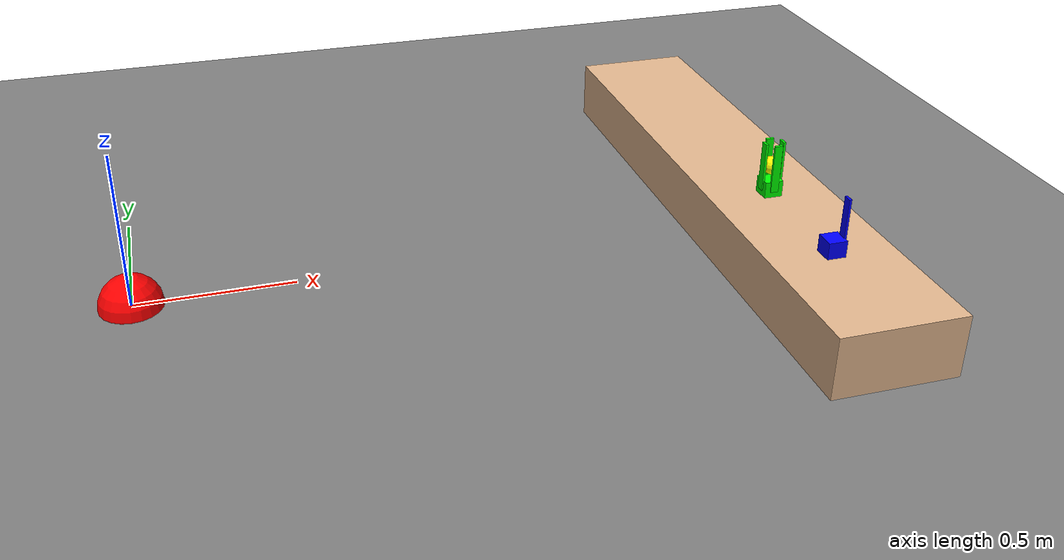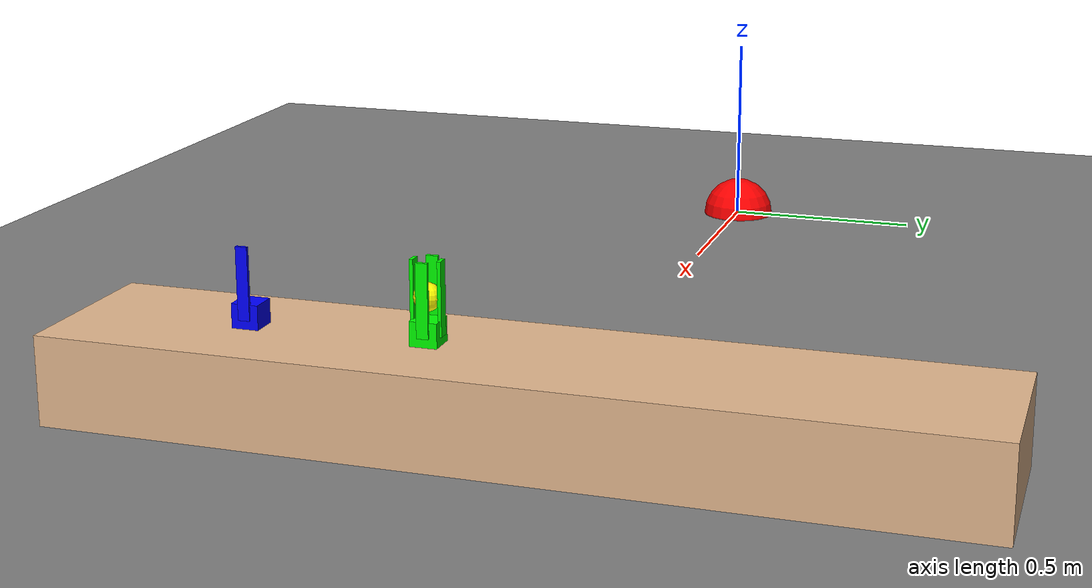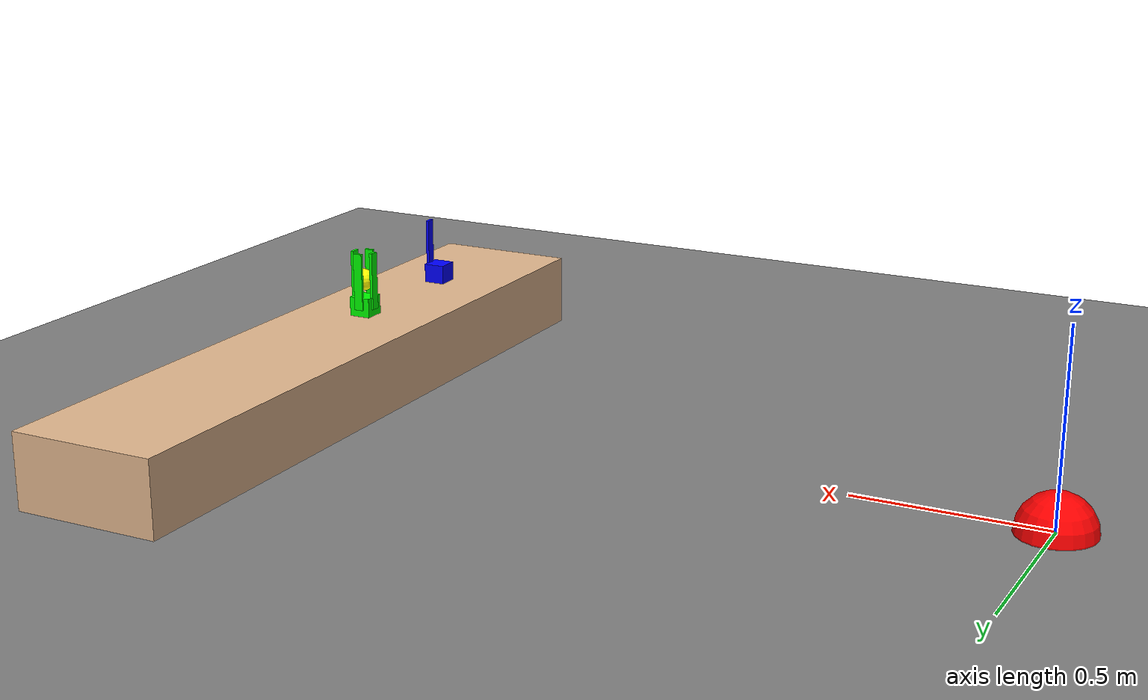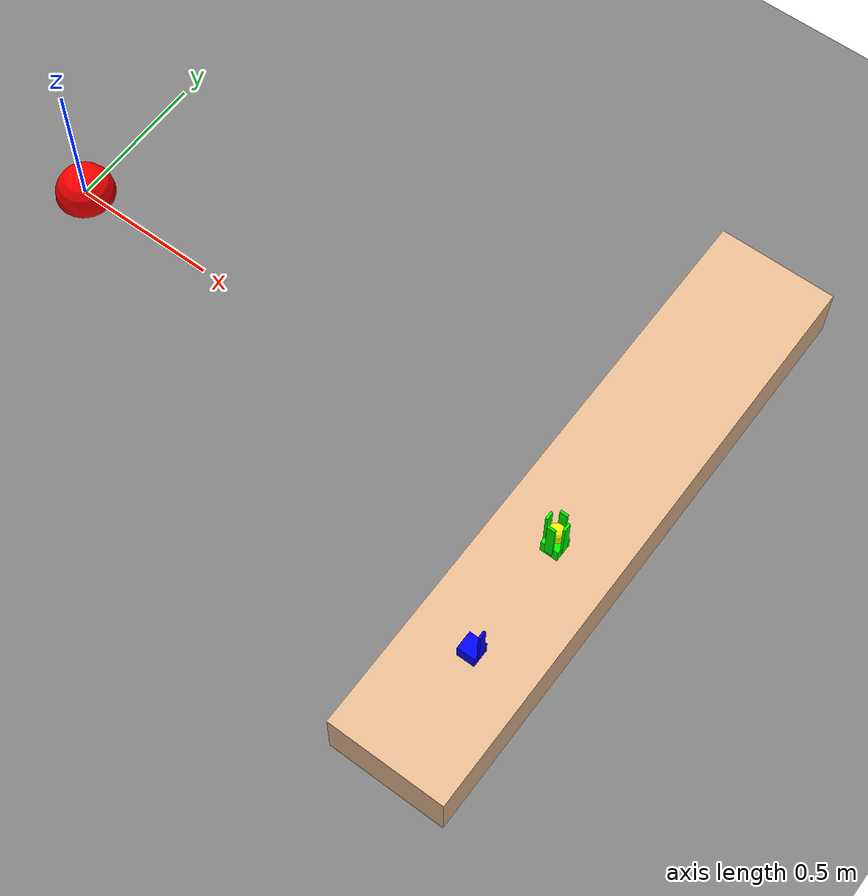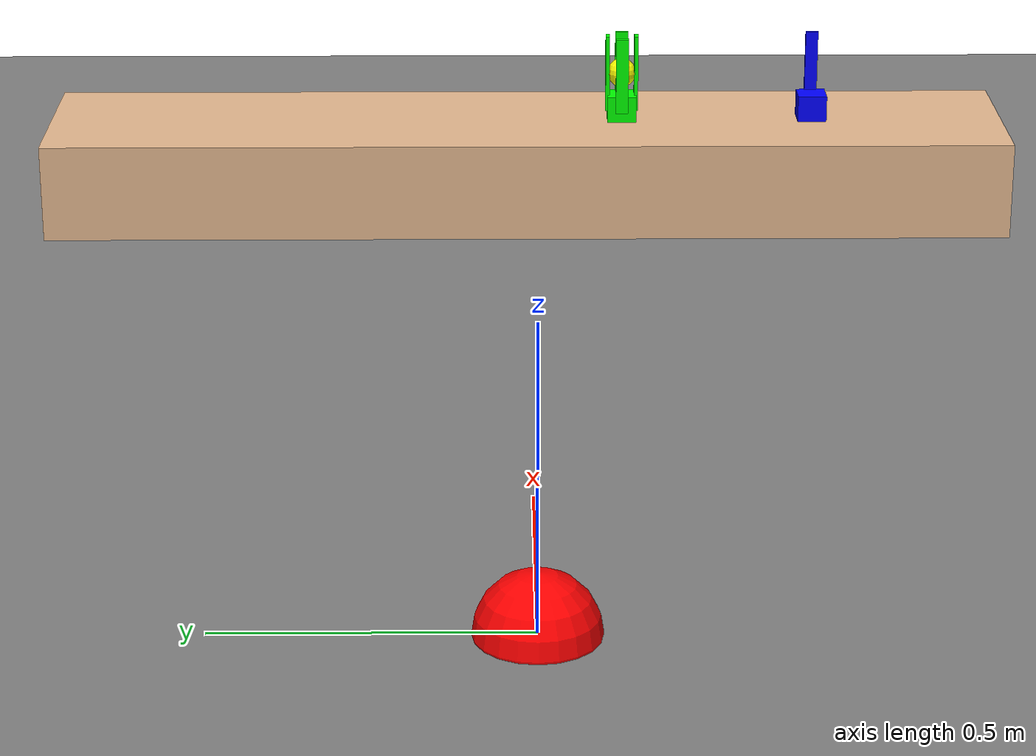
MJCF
<mujoco>
    <compiler/>
    <option timestep="0.002" integrator="Euler" solver="Newton" gravity="0 0 -9.81">
        <flag sensor="disable" contact="enable"/>
    </option>

    <default>
        <geom condim="4" solimp="0.99 0.99 0" solref="0.01 1" friction="1 0.005 0.0001"/>
    </default>

    <asset>
        <texture type="skybox" builtin="gradient" rgb1="1 1 1" rgb2=".6 .8 1" width="256" height="256"/>
        <texture name="grid" type="2d" builtin="checker" width="112" height="112" rgb1="0 0 0" rgb2="1 1 1" />
        <material name="grid" texture="grid" texrepeat="1 1" texuniform="true" reflectance=".2" />
    </asset>

    <worldbody>
        <geom name="floor" size="0 0 .05" type="plane" material="grid" condim="3" />
        <light diffuse="1 1 1" pos="0 0 5" dir="0 0 -1" />

        <!-- Debug markers -->
        <body name="debug_origin" pos="0 0 0">
            <geom type="sphere" size="0.1" rgba="1 0 0 1"/>
        </body>

        <body name="debug_cup_target" pos="2 -0.2 0.3">
            <geom type="sphere" size="0.03" rgba="1 1 0 1"/>
        </body>

        <!-- Table -->
        <body name="table" pos="2 0 0.1">
            <geom name="table_geom" type="box" size="0.2 1 0.1" rgba=".89 0.72 .56 1"/>
        </body>

        <!-- Test cup - simplified version -->
        <body name="free_cup" pos="2 -0.2 0.3">
            <freejoint/>
            <inertial pos="0.0 0.0 0.0" mass="0.01" diaginertia="0.0008 0.0008 0.00015" />
            <!-- Simplified cup geometry -->
            <geom name="cup_bottom" type="box" pos="0 0 -0.076" size="0.03 0.03 0.03" rgba="0 1 0 1"/>
            <geom name="cup_side1" type="box" pos="0.03 0 0" size="0.004 0.013 0.08" rgba="0 1 0 1" />
            <geom name="cup_side2" type="box" pos="-0.03 0 0" size="0.004 0.013 0.08" rgba="0 1 0 1" />
            <geom name="cup_side3" type="box" pos="0 0.03 0" size="0.013 0.004 0.08" rgba="0 1 0 1" />
            <geom name="cup_side4" type="box" pos="0 -0.03 0" size="0.013 0.004 0.08" rgba="0 1 0 1" />
        </body>

        <!-- Second cup for testing -->
        <body name="free_cup2" pos="2 -0.6 0.3">
            <freejoint/>
            <inertial pos="0.0 0.0 0.0" mass="0.01" diaginertia="0.0008 0.0008 0.00015" />
            <geom name="cup2_bottom" type="box" pos="0 0 -0.076" size="0.03 0.03 0.03" rgba="0 0 1 1"/>
            <geom name="cup2_side1" type="box" pos="0.03 0 0" size="0.004 0.013 0.08" rgba="0 0 1 1" />
        </body>
    </worldbody>
</mujoco>
